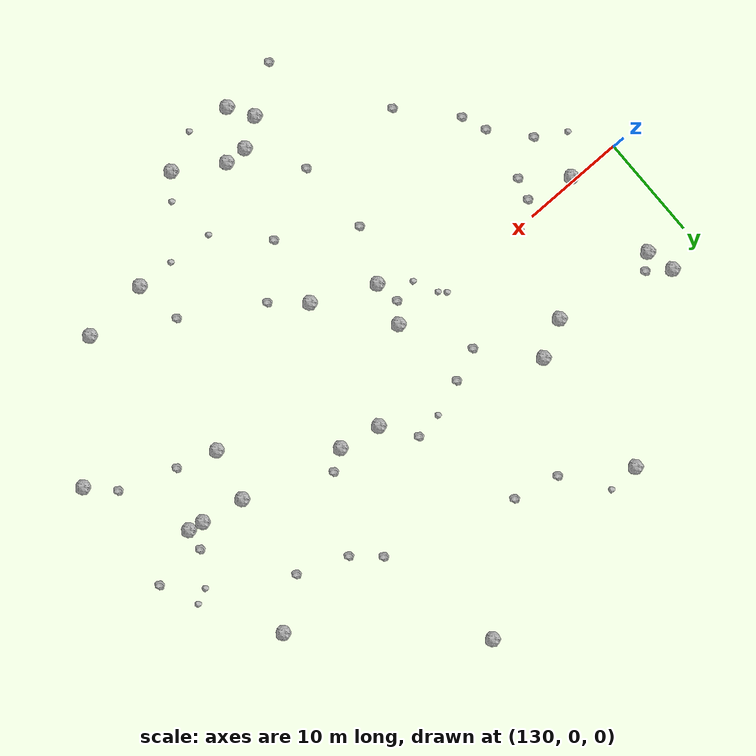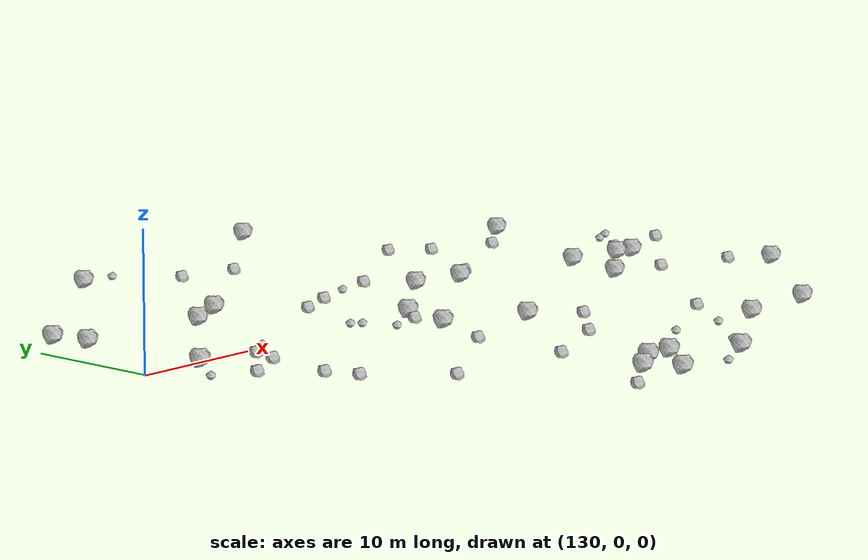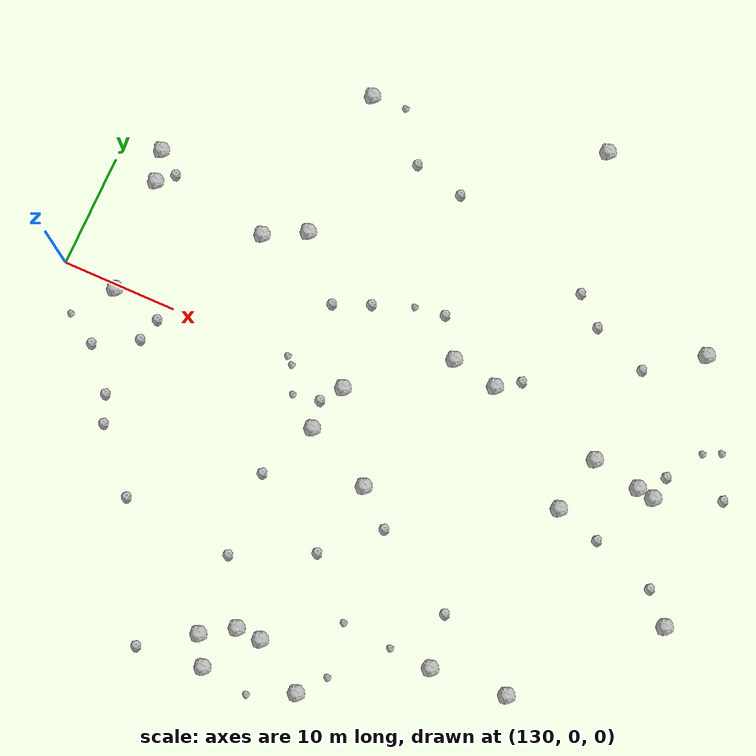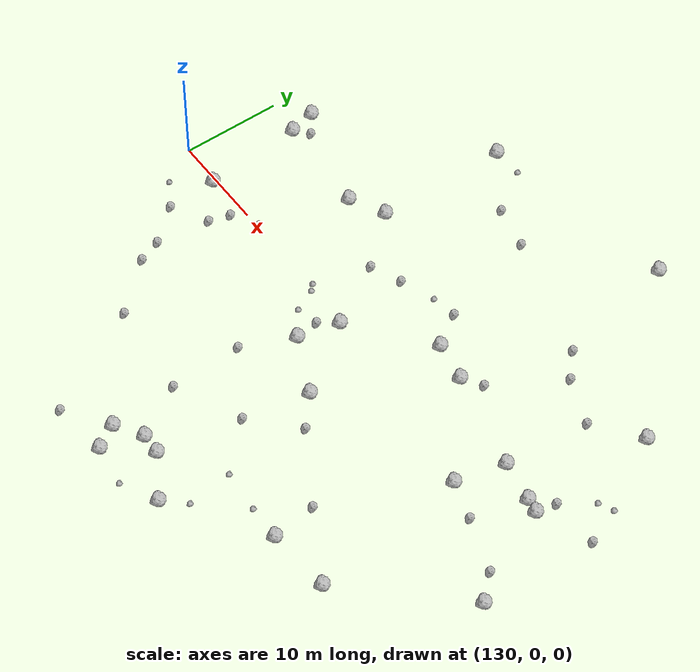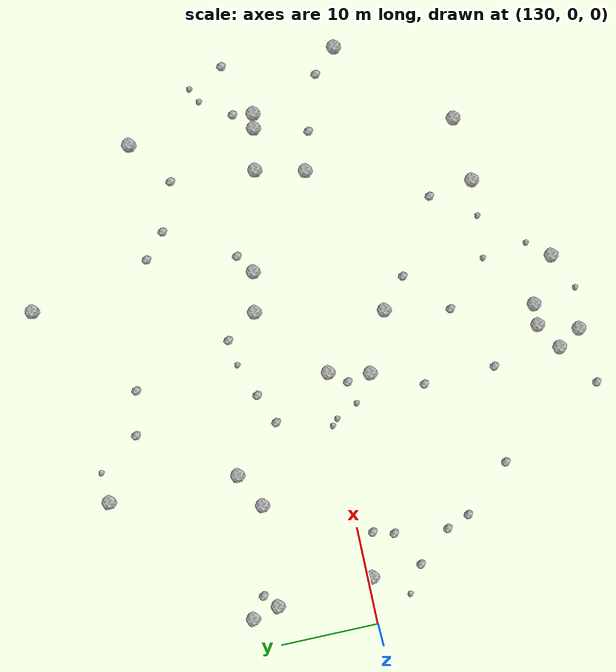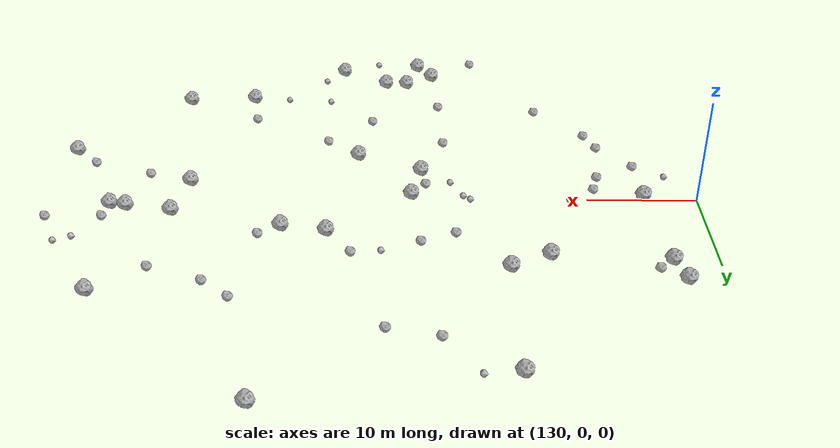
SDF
<sdf version="1.6">
 <world name="default">
  <include><uri>model://sun</uri></include>
  <model name="rock1_4_2">
   <include><uri>model://rock1</uri><pose>155.96620611953927 -0.5129686500444528 0.5 0 0 0</pose></include>
  </model>
  <model name="rock1_4_3">
   <include><uri>model://rock1</uri><pose>133.32606486796936 12.157599574223283 0.5 0 0 0</pose></include>
  </model>
  <model name="rock1_4_4">
   <include><uri>model://rock1</uri><pose>154.9042497629656 -26.182042598117107 0.5 0 0 0</pose></include>
  </model>
  <model name="rock1_4_5">
   <include><uri>model://rock1</uri><pose>134.02981589458608 9.454333629584653 0.5 0 0 0</pose></include>
  </model>
  <model name="rock1_4_6">
   <include><uri>model://rock1</uri><pose>167.5377238706184 4.706792773561027 0.5 0 0 0</pose></include>
  </model>
  <model name="rock1_4_7">
   <include><uri>model://rock1</uri><pose>178.39643401492705 -18.35297804794343 0.5 0 0 0</pose></include>
  </model>
  <model name="rock1_4_8">
   <include><uri>model://rock1</uri><pose>176.39612280935728 -2.6192220561333066 0.5 0 0 0</pose></include>
  </model>
  <model name="rock1_4_9">
   <include><uri>model://rock1</uri><pose>163.50723135742834 5.455425422965341 0.5 0 0 0</pose></include>
  </model>
  <model name="rock1_4_10">
   <include><uri>model://rock1</uri><pose>177.54663169853734 2.3526896311760623 0.5 0 0 0</pose></include>
  </model>
  <model name="rock1_4_11">
   <include><uri>model://rock1</uri><pose>147.8972370798717 23.85492318615762 0.5 0 0 0</pose></include>
  </model>
  <model name="rock1_4_12">
   <include><uri>model://rock1</uri><pose>168.3677716032178 27.361770672030367 0.5 0 0 0</pose></include>
  </model>
  <model name="rock1_4_13">
   <include><uri>model://rock1</uri><pose>144.2898657300181 8.82570296425611 0.5 0 0 0</pose></include>
  </model>
  <model name="rock1_4_14">
   <include><uri>model://rock1</uri><pose>160.91012755130353 -7.386509148863077 0.5 0 0 0</pose></include>
  </model>
  <model name="rock1_4_15">
   <include><uri>model://rock1</uri><pose>183.18436182479374 1.3125792508325276 0.5 0 0 0</pose></include>
  </model>
  <model name="rock1_4_16">
   <include><uri>model://rock1</uri><pose>134.86396800435162 -0.45923736422333405 0.5 0 0 0</pose></include>
  </model>
  <model name="rock1_4_17">
   <include><uri>model://rock1</uri><pose>158.27627657880814 -22.288055778832657 0.5 0 0 0</pose></include>
  </model>
  <model name="rock1_4_18">
   <include><uri>model://rock1</uri><pose>162.72429192750474 -25.032363914715788 0.5 0 0 0</pose></include>
  </model>
  <model name="rock1_4_19">
   <include><uri>model://rock1</uri><pose>188.03997223737815 -8.08875972483509 0.5 0 0 0</pose></include>
  </model>
  <model name="rock1_4_20">
   <include><uri>model://rock1</uri><pose>156.14484805536355 -22.198334147827495 0.5 0 0 0</pose></include>
  </model>
  <model name="rock1_4_21">
   <include><uri>model://rock1</uri><pose>155.0019722890496 -4.649221456942946 0.5 0 0 0</pose></include>
  </model>
  <model name="rock1_4_22">
   <include><uri>model://rock1</uri><pose>153.4807649685955 -23.88023019002155 0.5 0 0 0</pose></include>
  </model>
  <model name="rock1_4_23">
   <include><uri>model://rock1</uri><pose>181.71880934956926 1.580929771628373 0.5 0 0 0</pose></include>
  </model>
  <model name="rock1_4_24">
   <include><uri>model://rock1</uri><pose>171.87559130380373 -18.833843418464106 0.5 0 0 0</pose></include>
  </model>
  <model name="rock1_4_25">
   <include><uri>model://rock1</uri><pose>182.7483681175219 14.261431235540122 0.5 0 0 0</pose></include>
  </model>
  <model name="rock1_4_26">
   <include><uri>model://rock1</uri><pose>147.77963164949102 10.6182070081542 0.5 0 0 0</pose></include>
  </model>
  <model name="rock2_4_0">
   <include><uri>model://rock2</uri><pose>135.31213641577733 10.685841452524521 0.3 0 0 0</pose></include>
  </model>
  <model name="rock2_4_1">
   <include><uri>model://rock2</uri><pose>149.19496564547563 -26.82068033216178 0.3 0 0 0</pose></include>
  </model>
  <model name="rock2_4_2">
   <include><uri>model://rock2</uri><pose>155.23167395914484 6.999171360140373 0.3 0 0 0</pose></include>
  </model>
  <model name="rock2_4_3">
   <include><uri>model://rock2</uri><pose>152.1454226284227 5.7074803047052 0.3 0 0 0</pose></include>
  </model>
  <model name="rock2_4_4">
   <include><uri>model://rock2</uri><pose>135.049221578849 -5.510320577169097 0.3 0 0 0</pose></include>
  </model>
  <model name="rock2_4_5">
   <include><uri>model://rock2</uri><pose>169.42504770675077 5.994365363783409 0.3 0 0 0</pose></include>
  </model>
  <model name="rock2_4_6">
   <include><uri>model://rock2</uri><pose>171.19547644978695 -14.336663154347608 0.3 0 0 0</pose></include>
  </model>
  <model name="rock2_4_7">
   <include><uri>model://rock2</uri><pose>138.90534006501602 -11.262929787835422 0.3 0 0 0</pose></include>
  </model>
  <model name="rock2_4_8">
   <include><uri>model://rock2</uri><pose>178.2466200738761 10.959556496113713 0.3 0 0 0</pose></include>
  </model>
  <model name="rock2_4_9">
   <include><uri>model://rock2</uri><pose>137.97950826626254 -8.936383306691916 0.3 0 0 0</pose></include>
  </model>
  <model name="rock2_4_10">
   <include><uri>model://rock2</uri><pose>163.85616219008602 -9.962139413643783 0.3 0 0 0</pose></include>
  </model>
  <model name="rock2_4_11">
   <include><uri>model://rock2</uri><pose>158.29492795825865 18.825592246702968 0.3 0 0 0</pose></include>
  </model>
  <model name="rock2_4_12">
   <include><uri>model://rock2</uri><pose>188.559118493197 3.4496799146144497 0.3 0 0 0</pose></include>
  </model>
  <model name="rock2_4_13">
   <include><uri>model://rock2</uri><pose>138.6608709893409 -3.553464933992302 0.3 0 0 0</pose></include>
  </model>
  <model name="rock2_4_14">
   <include><uri>model://rock2</uri><pose>183.5251712052558 3.3730398179235763 0.3 0 0 0</pose></include>
  </model>
  <model name="rock2_4_15">
   <include><uri>model://rock2</uri><pose>161.27637063341507 8.659065359453045 0.3 0 0 0</pose></include>
  </model>
  <model name="rock2_4_16">
   <include><uri>model://rock2</uri><pose>180.2600050495642 -3.776662173718293 0.3 0 0 0</pose></include>
  </model>
  <model name="rock2_4_17">
   <include><uri>model://rock2</uri><pose>153.87431460125504 19.82737860956449 0.3 0 0 0</pose></include>
  </model>
  <model name="rock2_4_18">
   <include><uri>model://rock2</uri><pose>139.2450006538908 -1.4503124645626322 0.3 0 0 0</pose></include>
  </model>
  <model name="rock2_4_19">
   <include><uri>model://rock2</uri><pose>171.02913224140394 15.00279109018237 0.3 0 0 0</pose></include>
  </model>
  <model name="rock2_4_20">
   <include><uri>model://rock2</uri><pose>159.60926653452117 -13.965698895473395 0.3 0 0 0</pose></include>
  </model>
  <model name="rock2_4_21">
   <include><uri>model://rock2</uri><pose>173.44858665383435 12.834436063428342 0.3 0 0 0</pose></include>
  </model>
  <model name="rock2_4_22">
   <include><uri>model://rock2</uri><pose>152.9774454597217 -17.052011901945097 0.3 0 0 0</pose></include>
  </model>
  <model name="rock2_4_23">
   <include><uri>model://rock2</uri><pose>152.732112303678 -9.756855654964799 0.3 0 0 0</pose></include>
  </model>
  <model name="rock2_4_24">
   <include><uri>model://rock2</uri><pose>185.7538086251039 -5.71332886717321 0.3 0 0 0</pose></include>
  </model>
  <model name="rock2_4_25">
   <include><uri>model://rock2</uri><pose>143.27920975198515 -16.088836788154556 0.3 0 0 0</pose></include>
  </model>
  <model name="rock2_4_26">
   <include><uri>model://rock2</uri><pose>154.59770108244737 -2.2415786136473344 0.3 0 0 0</pose></include>
  </model>
  <model name="rock3_4_0">
   <include><uri>model://rock3</uri><pose>150.55797901022635 0.15622117601130725 0.2 0 0 0</pose></include>
  </model>
  <model name="rock3_4_1">
   <include><uri>model://rock3</uri><pose>164.4889300722847 -22.896876587249803 0.2 0 0 0</pose></include>
  </model>
  <model name="rock3_4_2">
   <include><uri>model://rock3</uri><pose>158.63714697858882 8.283945296942605 0.2 0 0 0</pose></include>
  </model>
  <model name="rock3_4_3">
   <include><uri>model://rock3</uri><pose>185.5328193469269 6.409687723223946 0.2 0 0 0</pose></include>
  </model>
  <model name="rock3_4_4">
   <include><uri>model://rock3</uri><pose>163.90308215725372 -18.324222360920196 0.2 0 0 0</pose></include>
  </model>
  <model name="rock3_4_5">
   <include><uri>model://rock3</uri><pose>151.1722205981388 -0.422088761688741 0.2 0 0 0</pose></include>
  </model>
  <model name="rock3_4_6">
   <include><uri>model://rock3</uri><pose>168.21208622112573 -18.67681234828381 0.2 0 0 0</pose></include>
  </model>
  <model name="rock3_4_7">
   <include><uri>model://rock3</uri><pose>152.28008616955134 -2.685583108643087 0.2 0 0 0</pose></include>
  </model>
  <model name="rock3_4_8">
   <include><uri>model://rock3</uri><pose>141.5560480976102 0.15870999488539184 0.2 0 0 0</pose></include>
  </model>
  <model name="rock3_4_9">
   <include><uri>model://rock3</uri><pose>132.3195114877468 -3.863214024188313 0.2 0 0 0</pose></include>
  </model>
  <model name="rock3_4_10">
   <include><uri>model://rock3</uri><pose>186.98823318713204 7.0844268786470295 0.2 0 0 0</pose></include>
  </model>
  <model name="rock3_4_11">
   <include><uri>model://rock3</uri><pose>150.90252100127444 24.032600985296575 0.2 0 0 0</pose></include>
  </model>
  <model name="rock3_4_12">
   <include><uri>model://rock3</uri><pose>159.00271160334773 -26.79703660790694 0.2 0 0 0</pose></include>
  </model>
 </world>
</sdf>
